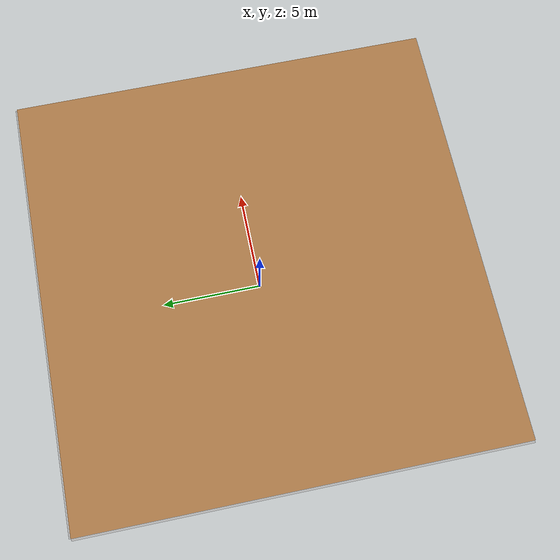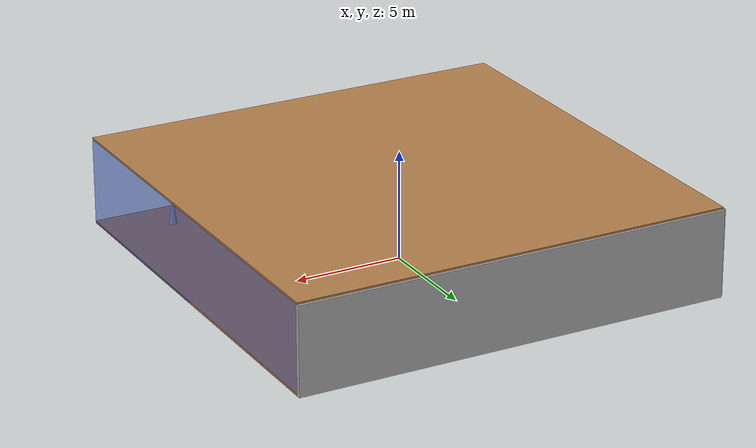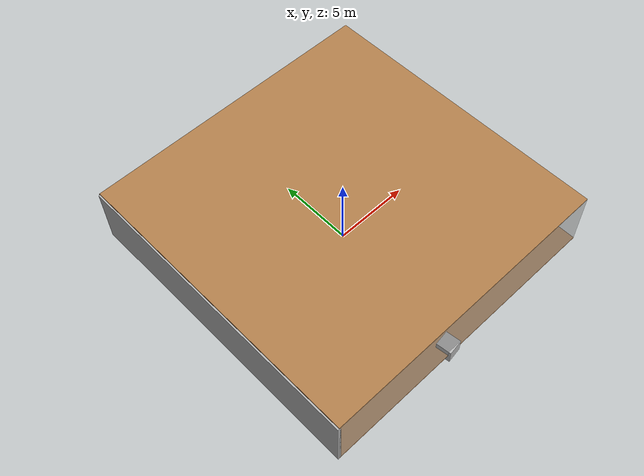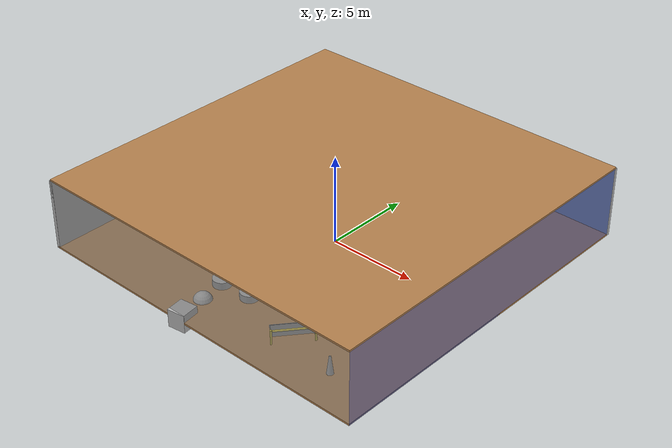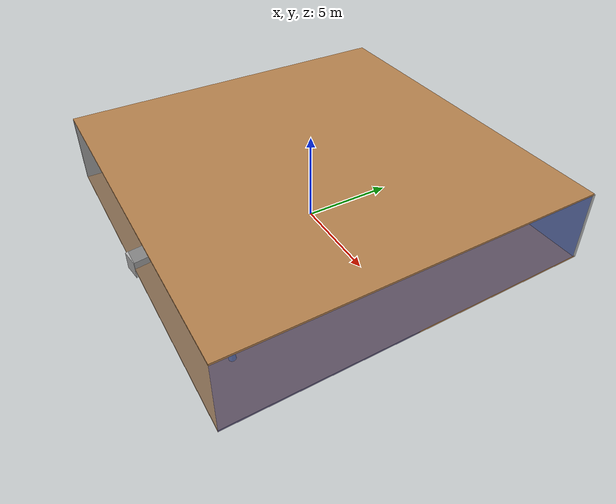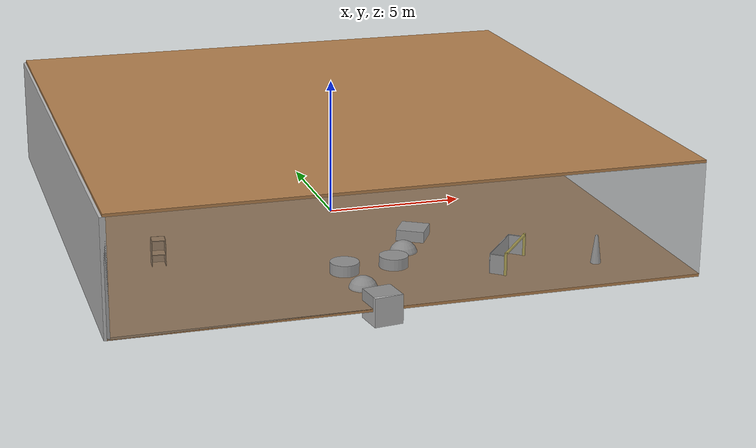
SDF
<sdf version="1.4">
 <world name="default">
  <physics type="ode">
   <max_step_size>0.001</max_step_size>
   <real_time_factor>1</real_time_factor>
   <real_time_update_rate>1000</real_time_update_rate>
   <gravity>0 0 -9.8</gravity>
  </physics>
  <scene><ambient>0.4 0.4 0.4 1</ambient><background>0.7 0.7 0.7 1</background><shadows>1</shadows></scene>
  <model name="Surrounding">
   <static>1</static>
   <link name="Ceiling">
    <collision name="Ceiling_Collision"><geometry><box><size>20 20 0.1</size></box></geometry></collision>
    <visual name="Ceiling_Visual">
     <geometry><box><size>20 20 0.1</size></box></geometry>
     <material>
      <script><uri>file://media/materials/scripts/gazebo.material</uri><name>Gazebo/WoodPallet</name></script>
     </material>
    </visual>
    <pose>0 0 4.05 0 0 0</pose>
   </link>
   <link name="Wall_South">
    <collision name="Wall_South_Collision">
     <geometry><box><size>20 0 4</size></box></geometry>
     <pose>0 0 2 0 -0 0</pose>
    </collision>
    <visual name="Wall_South_Visual">
     <pose>0 0 2 0 -0 0</pose>
     <geometry><box><size>20 0 4</size></box></geometry>
     <material>
      <script><uri>file://media/materials/scripts/gazebo.material</uri><name>Gazebo/GreyTransparent</name></script>
     </material>
    </visual>
    <velocity_decay><linear>0</linear><angular>0</angular></velocity_decay>
    <pose>0 -10 0 0 -0 0</pose>
   </link>
   <link name="Wall_East">
    <collision name="Wall_21_Collision">
     <geometry><box><size>20 0 4</size></box></geometry>
     <pose>0 0 2 0 -0 0</pose>
    </collision>
    <visual name="Wall_21_Visual">
     <pose>0 0 2 0 -0 0</pose>
     <geometry><box><size>20 0 4</size></box></geometry>
     <material>
      <script><uri>file://media/materials/scripts/gazebo.material</uri><name>Gazebo/BlueTransparent</name></script>
     </material>
    </visual>
    <velocity_decay><linear>0</linear><angular>0</angular></velocity_decay>
    <pose>10 0 0 0 -0 1.5708</pose>
   </link>
   <link name="Wall_North">
    <collision name="Wall_22_Collision">
     <geometry><box><size>20 0.2 4</size></box></geometry>
     <pose>0 0 2 0 -0 0</pose>
    </collision>
    <visual name="Wall_22_Visual">
     <pose>0 0 2 0 -0 0</pose>
     <geometry><box><size>20 0.2 4</size></box></geometry>
     <material>
      <script><uri>file://media/materials/scripts/gazebo.material</uri><name>Gazebo/Pioneer2Body</name></script>
     </material>
    </visual>
    <velocity_decay><linear>0</linear><angular>0</angular></velocity_decay>
    <pose>0 10 0 0 -0 0</pose>
   </link>
   <link name="Wall_West">
    <collision name="Wall_23_Collision">
     <geometry><box><size>20 0.2 4</size></box></geometry>
     <pose>0 0 2 0 -0 0</pose>
    </collision>
    <visual name="Wall_23_Visual">
     <pose>0 0 2 0 -0 0</pose>
     <geometry><box><size>20 0.2 4</size></box></geometry>
     <material>
      <script><uri>file://media/materials/scripts/gazebo.material</uri><name>Gazebo/JointAnchor</name></script>
     </material>
    </visual>
    <velocity_decay><linear>0</linear><angular>0</angular></velocity_decay>
    <pose>-10 0 0 0 0 -1.5708</pose>
   </link>
   <link name="Ground_link">
    <collision name="collision">
     <pose>0 0 .05 0 -0 0</pose>
     <geometry><box><size>20 20 0.1</size></box></geometry>
    </collision>
    <visual name="visual">
     <pose>0 0 .05 0 -0 0</pose>
     <geometry><box><size>20 20 0.1</size></box></geometry>
     <material>
      <script><uri>file://media/materials/scripts/gazebo.material</uri><name>Gazebo/WoodPallet</name></script>
     </material>
    </visual>
   </link>
   <static>1</static>
  </model>
  <spherical_coordinates>
   <surface_model>EARTH_WGS84</surface_model>
   <latitude_deg>0</latitude_deg>
   <longitude_deg>0</longitude_deg>
   <elevation>0</elevation>
   <heading_deg>0</heading_deg>
  </spherical_coordinates>
  <light name="lightball_0" type="diffuse">
   <diffuse>0.8 0.8 0.8 1</diffuse>
   <specular>0.2 0.2 0.2 1</specular>
   <attenuation>
    <range>100</range>
    <constant>0.7</constant>
    <linear>0.01</linear>
    <quadratic>0.001</quadratic>
   </attenuation>
   <direction>-0.5 0.1 -0.9</direction>
   <pose>7.89315027812 -0.558705841545 2.51275043069 0 0 0</pose>
  </light>
  <light name="lightball_1" type="diffuse">
   <diffuse>0.8 0.8 0.8 1</diffuse>
   <specular>0.2 0.2 0.2 1</specular>
   <attenuation>
    <range>100</range>
    <constant>0.7</constant>
    <linear>0.01</linear>
    <quadratic>0.001</quadratic>
   </attenuation>
   <direction>-0.5 0.1 -0.9</direction>
   <pose>1.76040319988 2.26313819667 2.92238195333 0 0 0</pose>
  </light>
  <light name="lightball_2" type="diffuse">
   <diffuse>0.8 0.8 0.8 1</diffuse>
   <specular>0.2 0.2 0.2 1</specular>
   <attenuation>
    <range>100</range>
    <constant>0.7</constant>
    <linear>0.01</linear>
    <quadratic>0.001</quadratic>
   </attenuation>
   <direction>-0.5 0.1 -0.9</direction>
   <pose>7.23364275407 4.60409021464 3.7076251924 0 0 0</pose>
  </light>
  <light name="lightball_3" type="diffuse">
   <diffuse>0.8 0.8 0.8 1</diffuse>
   <specular>0.2 0.2 0.2 1</specular>
   <attenuation>
    <range>100</range>
    <constant>0.7</constant>
    <linear>0.01</linear>
    <quadratic>0.001</quadratic>
   </attenuation>
   <direction>-0.5 0.1 -0.9</direction>
   <pose>-6.95591188091 -1.68863627214 3.1051038206 0 0 0</pose>
  </light>
  <light name="lightball_4" type="diffuse">
   <diffuse>0.8 0.8 0.8 1</diffuse>
   <specular>0.2 0.2 0.2 1</specular>
   <attenuation>
    <range>100</range>
    <constant>0.7</constant>
    <linear>0.01</linear>
    <quadratic>0.001</quadratic>
   </attenuation>
   <direction>-0.5 0.1 -0.9</direction>
   <pose>2.0637250718 -5.81463943008 3.85027938935 0 0 0</pose>
  </light>
  <light name="lightball_5" type="diffuse">
   <diffuse>0.8 0.8 0.8 1</diffuse>
   <specular>0.2 0.2 0.2 1</specular>
   <attenuation>
    <range>100</range>
    <constant>0.7</constant>
    <linear>0.01</linear>
    <quadratic>0.001</quadratic>
   </attenuation>
   <direction>-0.5 0.1 -0.9</direction>
   <pose>3.3678851379 -6.03791892881 2.34845768984 0 0 0</pose>
  </light>
  <light name="lightball_6" type="diffuse">
   <diffuse>0.8 0.8 0.8 1</diffuse>
   <specular>0.2 0.2 0.2 1</specular>
   <attenuation>
    <range>100</range>
    <constant>0.7</constant>
    <linear>0.01</linear>
    <quadratic>0.001</quadratic>
   </attenuation>
   <direction>-0.5 0.1 -0.9</direction>
   <pose>3.57676494734 2.11938480713 2.96536259277 0 0 0</pose>
  </light>
  <light name="lightball_7" type="diffuse">
   <diffuse>0.8 0.8 0.8 1</diffuse>
   <specular>0.2 0.2 0.2 1</specular>
   <attenuation>
    <range>100</range>
    <constant>0.7</constant>
    <linear>0.01</linear>
    <quadratic>0.001</quadratic>
   </attenuation>
   <direction>-0.5 0.1 -0.9</direction>
   <pose>6.07279234478 -3.57601150655 2.43842590799 0 0 0</pose>
  </light>
  <light name="lightball_8" type="diffuse">
   <diffuse>0.8 0.8 0.8 1</diffuse>
   <specular>0.2 0.2 0.2 1</specular>
   <attenuation>
    <range>100</range>
    <constant>0.7</constant>
    <linear>0.01</linear>
    <quadratic>0.001</quadratic>
   </attenuation>
   <direction>-0.5 0.1 -0.9</direction>
   <pose>1.73245423769 1.46851644216 0.619704677 0 0 0</pose>
  </light>
  <light name="lightball_9" type="diffuse">
   <diffuse>0.8 0.8 0.8 1</diffuse>
   <specular>0.2 0.2 0.2 1</specular>
   <attenuation>
    <range>100</range>
    <constant>0.7</constant>
    <linear>0.01</linear>
    <quadratic>0.001</quadratic>
   </attenuation>
   <direction>-0.5 0.1 -0.9</direction>
   <pose>6.66368276166 -3.98352685077 1.78442704229 0 0 0</pose>
  </light>
  <light name="lightball_10" type="diffuse">
   <diffuse>0.8 0.8 0.8 1</diffuse>
   <specular>0.2 0.2 0.2 1</specular>
   <attenuation>
    <range>100</range>
    <constant>0.7</constant>
    <linear>0.01</linear>
    <quadratic>0.001</quadratic>
   </attenuation>
   <direction>-0.5 0.1 -0.9</direction>
   <pose>7.25568575779 9.9090677086 0.855200472434 0 0 0</pose>
  </light>
  <include><uri>model://cabinet</uri><pose>-7.29838380976 -4.10251413417 0 0 0 1.49461087777</pose></include>
  <include>
   <uri>model://textured_shapes</uri>
   <pose>-1.22357887832 -8.10389012063 0 0 0 0.134623393612</pose>
  </include>
  <include><uri>model://cabinet</uri><pose>-0.942762866576 7.79304857737 0 0 0 1.98795392319</pose></include>
  <include>
   <uri>model://textured_shapes</uri>
   <pose>1.12735394099 -5.20242468137 0 0 0 2.5980309786</pose>
  </include>
  <include>
   <uri>model://robocup_3Dsim_goal</uri>
   <pose>4.33968545167 -7.54475238396 0 0 0 2.45957164882</pose>
  </include>
  <include>
   <uri>model://construction_cone</uri>
   <pose>7.10005487387 -8.05884126962 0 0 0 1.64900020773</pose>
  </include>
 </world>
</sdf>

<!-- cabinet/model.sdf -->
<sdf version="1.5">
  <model name="cabinet">
    <static>true</static>
    <link name="cabinet_bottom_plate">
      <inertial>
        <pose>0 0 -1 0 0 0</pose>
        <inertia>
          <ixx>2.050000</ixx>
          <ixy>0</ixy>
          <ixz>0</ixz>
          <iyy>2.050000</iyy>
          <iyz>0</iyz>
          <izz>2.050000</izz>
        </inertia>
        <mass>25.000000</mass>
      </inertial>
      <collision name="cabinet_bottom_plate_geom">
        <pose>0 0 0.010000 0 0 0</pose>
        <geometry>
          <box>
            <size>0.450000 0.450000 0.020000</size>
          </box>
        </geometry>
      </collision>
      <visual name="cabinet_bottom_plate_geom_visual">
        <pose>0 0 0.010000 0 0 0</pose>
        <geometry>
          <box>
            <size>0.450000 0.450000 0.020000</size>
          </box>
        </geometry>
        <material>
          <script>
            <uri>model://media/materials/scripts/gazebo.material</uri>
            <name>Gazebo/Wood</name>
          </script>
        </material>
      </visual>
      <collision name="cabinet_bottom_plate_geom_cabinet_back_plate">
        <pose>0.235000 0 0.510000 0 0 0</pose>
        <geometry>
          <box>
            <size>0.020000 0.450000 1.020000</size>
          </box>
        </geometry>
      </collision>
      <visual name="cabinet_bottom_plate_geom_cabinet_back_plate_visual">
        <pose>0.235000 0 0.510000 0 0 0</pose>
        <geometry>
          <box>
            <size>0.020000 0.450000 1.020000</size>
          </box>
        </geometry>
        <material>
          <script>
            <uri>model://media/materials/scripts/gazebo.material</uri>
            <name>Gazebo/Wood</name>
          </script>
        </material>
      </visual>
      <collision name="cabinet_bottom_plate_geom_cabinet_left_plate">
        <pose>0 0.235000 0.510000 0 0 0</pose>
        <geometry>
          <box>
            <size>0.450000 0.020000 1.020000</size>
          </box>
        </geometry>
      </collision>
      <visual name="cabinet_bottom_plate_geom_cabinet_left_plate_visual">
        <pose>0 0.235000 0.510000 0 0 0</pose>
        <geometry>
          <box>
            <size>0.450000 0.020000 1.020000</size>
          </box>
        </geometry>
        <material>
          <script>
            <uri>model://media/materials/scripts/gazebo.material</uri>
            <name>Gazebo/Wood</name>
          </script>
        </material>
      </visual>
      <collision name="cabinet_bottom_plate_geom_cabinet_middle_plate">
        <pose>0 0 0.510000 0 0 0</pose>
        <geometry>
          <box>
            <size>0.450000 0.450000 0.020000</size>
          </box>
        </geometry>
      </collision>
      <visual name="cabinet_bottom_plate_geom_cabinet_middle_plate_visual">
        <pose>0 0 0.510000 0 0 0</pose>
        <geometry>
          <box>
            <size>0.450000 0.450000 0.020000</size>
          </box>
        </geometry>
        <material>
          <script>
            <uri>model://media/materials/scripts/gazebo.material</uri>
            <name>Gazebo/Wood</name>
          </script>
        </material>
      </visual>
      <collision name="cabinet_bottom_plate_geom_cabinet_right_plate">
        <pose>0 -0.235000 0.510000 0 0 0</pose>
        <geometry>
          <box>
            <size>0.450000 0.020000 1.020000</size>
          </box>
        </geometry>
      </collision>
      <visual name="cabinet_bottom_plate_geom_cabinet_right_plate_visual">
        <pose>0 -0.235000 0.510000 0 0 0</pose>
        <geometry>
          <box>
            <size>0.450000 0.020000 1.020000</size>
          </box>
        </geometry>
        <material>
          <script>
            <uri>model://media/materials/scripts/gazebo.material</uri>
            <name>Gazebo/Wood</name>
          </script>
        </material>
      </visual>
      <collision name="cabinet_bottom_plate_geom_cabinet_top_plate">
        <pose>0 0 1.010000 0 0 0</pose>
        <geometry>
          <box>
            <size>0.450000 0.450000 0.020000</size>
          </box>
        </geometry>
      </collision>
      <visual name="cabinet_bottom_plate_geom_cabinet_top_plate_visual">
        <pose>0 0 1.010000 0 0 0</pose>
        <geometry>
          <box>
            <size>0.450000 0.450000 0.020000</size>
          </box>
        </geometry>
        <material>
          <script>
            <uri>model://media/materials/scripts/gazebo.material</uri>
            <name>Gazebo/Wood</name>
          </script>
        </material>
      </visual>
    </link>
  </model>
</sdf>

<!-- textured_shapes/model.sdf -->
<sdf version="1.6">
  <model name="textured_shapes">
    <pose>0 0 0.5 0 0 0</pose>
    <link name="box">
      <pose>0 -1.5 0 0 0 0</pose>
      <collision name="collision">
        <geometry>
          <box>
            <size>1 1 1</size>
          </box>
        </geometry>
      </collision>
      <visual name="visual">
        <geometry>
          <box>
            <size>1 1 1</size>
          </box>
        </geometry>
        <material>
          <script>
            <uri>model://../model_source/models/textured_shapes/materials/scripts</uri>
            <uri>model://../model_source/models/textured_shapes/materials/textures</uri>
            <name>TexturedShape/Squares</name>
          </script>
        </material>
      </visual>
    </link>
    <link name="sphere">
      <collision name="collision">
        <geometry>
          <sphere>
            <radius>0.5</radius>
          </sphere>
        </geometry>
      </collision>
      <visual name="visual">
        <geometry>
          <sphere>
            <radius>0.5</radius>
          </sphere>
        </geometry>
        <material>
          <script>
            <uri>model://../model_source/models/textured_shapes/materials/scripts</uri>
            <uri>model://../model_source/models/textured_shapes/materials/textures</uri>
            <name>TexturedShape/Squares</name>
          </script>
        </material>
      </visual>
    </link>
    <link name="cylinder">
      <pose>0 1.5 0 0 0 0</pose>
      <collision name="collision">
        <geometry>
          <cylinder>
            <radius>0.5</radius>
            <length>1</length>
          </cylinder>
        </geometry>
      </collision>
      <visual name="visual">
        <geometry>
          <cylinder>
            <radius>0.5</radius>
            <length>1</length>
          </cylinder>
        </geometry>
        <material>
          <script>
            <uri>model://../model_source/models/textured_shapes/materials/scripts</uri>
            <uri>model://../model_source/models/textured_shapes/materials/textures</uri>
            <name>TexturedShape/Squares</name>
          </script>
        </material>
      </visual>
    </link>
  </model>
</sdf>

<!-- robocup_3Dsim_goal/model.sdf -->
<sdf version="1.5">
  <model name="robocup_3d_goal">
    <static>true</static>
    <link name="left_post">
      <pose>0 1.05 0.45 0 0 0</pose>
      <collision name="collision">
        <geometry>
          <cylinder>
            <radius>0.05</radius>
            <length>0.9</length>
          </cylinder>
        </geometry>
      </collision>
      <visual name="visual">
        <geometry>
          <cylinder>
            <radius>0.05</radius>
            <length>0.9</length>
          </cylinder>
        </geometry>
        <material>
          <script>
            <uri>file://media/materials/scripts/gazebo.material</uri>
            <name>Gazebo/ZincYellow</name>
          </script>
        </material>
      </visual>
    </link>
    <link name="left_support_horiz_lower">
      <pose>0.30 1.05 0.01 0 0 0</pose>
      <collision name="collision">
        <geometry>
          <box>
            <size>0.50 0.02 0.02</size>
          </box>
        </geometry>
      </collision>
      <visual name="visual">
        <geometry>
          <box>
            <size>0.50 0.02 0.02</size>
          </box>
        </geometry>
        <material>
          <script>
            <uri>file://media/materials/scripts/gazebo.material</uri>
            <name>Gazebo/White</name>
          </script>
        </material>
      </visual>
    </link>
    <link name="left_support_horiz_upper">
      <pose>0.30 1.05 0.79 0 0 0</pose>
      <collision name="collision">
        <geometry>
          <box>
            <size>0.50 0.02 0.02</size>
          </box>
        </geometry>
      </collision>
      <visual name="visual">
        <geometry>
          <box>
            <size>0.50 0.02 0.02</size>
          </box>
        </geometry>
        <material>
          <script>
            <uri>file://media/materials/scripts/gazebo.material</uri>
            <name>Gazebo/White</name>
          </script>
        </material>
      </visual>
    </link>
    <link name="left_support_vertical">
      <pose>0.56 1.05 0.4 0 1.5708 0</pose>
      <collision name="collision">
        <geometry>
          <box>
            <size>0.80 0.02 0.02</size>
          </box>
        </geometry>
      </collision>
      <visual name="visual">
        <geometry>
          <box>
            <size>0.80 0.02 0.02</size>
          </box>
        </geometry>
        <material>
          <script>
            <uri>file://media/materials/scripts/gazebo.material</uri>
            <name>Gazebo/White</name>
          </script>
        </material>
      </visual>
    </link>
    <link name="right_support_horiz_lower">
      <pose>0.30 -1.05 0.01 0 0 0</pose>
      <collision name="collision">
        <geometry>
          <box>
            <size>0.50 0.02 0.02</size>
          </box>
        </geometry>
      </collision>
      <visual name="visual">
        <geometry>
          <box>
            <size>0.50 0.02 0.02</size>
          </box>
        </geometry>
        <material>
          <script>
            <uri>file://media/materials/scripts/gazebo.material</uri>
            <name>Gazebo/White</name>
          </script>
        </material>
      </visual>
    </link>
    <link name="right_support_horiz_upper">
      <pose>0.30 -1.05 0.79 0 0 0</pose>
      <collision name="collision">
        <geometry>
          <box>
            <size>0.50 0.02 0.02</size>
          </box>
        </geometry>
      </collision>
      <visual name="visual">
        <geometry>
          <box>
            <size>0.50 0.02 0.02</size>
          </box>
        </geometry>
        <material>
          <script>
            <uri>file://media/materials/scripts/gazebo.material</uri>
            <name>Gazebo/White</name>
          </script>
        </material>
      </visual>
    </link>
    <link name="right_support_vertical">
      <pose>0.56 -1.05 0.4 0 1.5708 0</pose>
      <collision name="collision">
        <geometry>
          <box>
            <size>0.80 0.02 0.02</size>
          </box>
        </geometry>
      </collision>
      <visual name="visual">
        <geometry>
          <box>
            <size>0.80 0.02 0.02</size>
          </box>
        </geometry>
        <material>
          <script>
            <uri>file://media/materials/scripts/gazebo.material</uri>
            <name>Gazebo/White</name>
          </script>
        </material>
      </visual>
    </link>
    <link name="center_support_horiz_lower">
      <pose>0.56 0 0.01 0 1.5708 0</pose>
      <collision name="collision">
        <geometry>
          <box>
            <size>0.02 2.08 0.02</size>
          </box>
        </geometry>
      </collision>
      <visual name="visual">
        <geometry>
          <box>
            <size>0.02 2.08 0.02</size>
          </box>
        </geometry>
        <material>
          <script>
            <uri>file://media/materials/scripts/gazebo.material</uri>
            <name>Gazebo/White</name>
          </script>
        </material>
      </visual>
    </link>
    <link name="center_support_horiz_upper">
      <pose>0.56 0 0.79 0 1.5708 0</pose>
      <collision name="collision">
        <geometry>
          <box>
            <size>0.02 2.08 0.02</size>
          </box>
        </geometry>
      </collision>
      <visual name="visual">
        <geometry>
          <box>
            <size>0.02 2.08 0.02</size>
          </box>
        </geometry>
        <material>
          <script>
            <uri>file://media/materials/scripts/gazebo.material</uri>
            <name>Gazebo/White</name>
          </script>
        </material>
      </visual>
    </link>
    <link name="right_post">
      <pose>0 -1.05 0.45 0 0 0</pose>
      <collision name="collision">
        <geometry>
          <cylinder>
            <radius>0.05</radius>
            <length>0.9</length>
          </cylinder>
        </geometry>
      </collision>
      <visual name="visual">
        <geometry>
          <cylinder>
            <radius>0.05</radius>
            <length>0.9</length>
          </cylinder>
        </geometry>
        <material>
          <script>
            <uri>file://media/materials/scripts/gazebo.material</uri>
            <name>Gazebo/ZincYellow</name>
          </script>
        </material>
      </visual>
    </link>
    <link name="crossbar">
      <pose>0 0 0.85 1.57 1.57 0</pose>
      <collision name="collision">
        <geometry>
          <cylinder>
            <radius>0.05</radius>
            <length>2.0</length>
          </cylinder>
        </geometry>
      </collision>
      <visual name="visual">
        <geometry>
          <cylinder>
            <radius>0.05</radius>
            <length>2.0</length>
          </cylinder>
        </geometry>
        <material>
          <script>
            <uri>file://media/materials/scripts/gazebo.material</uri>
            <name>Gazebo/ZincYellow</name>
          </script>
        </material>
      </visual>
    </link>
    <link name="center_net">
      <pose>0.56 0 0.40 0 0 0</pose>
      <collision name="collision">
        <geometry>
          <box>
            <size>0.01 2.1 0.80</size>
          </box>
        </geometry>
      </collision>
      <visual name="visual">
        <geometry>
          <box>
            <size>0.01 2.1 0.80</size>
          </box>
        </geometry>
        <material>
          <script>
            <uri>model://../model_source/models/robocup09_spl_field/materials/scripts/</uri>
            <uri>model://../model_source/models/robocup09_spl_field/materials/textures/</uri>
            <name>RoboCup/Net</name>
          </script>
        </material>
      </visual>
    </link>
    <link name="left_net">
      <pose>0.30 1.05 0.40 0 0 0</pose>
      <collision name="collision">
        <geometry>
          <box>
            <size>0.50 0.01 0.76</size>
          </box>
        </geometry>
      </collision>
      <visual name="visual">
        <geometry>
          <box>
            <size>0.50 0.01 0.76</size>
          </box>
        </geometry>
        <material>
          <script>
            <uri>model://../model_source/models/robocup09_spl_field/materials/scripts/</uri>
            <uri>model://../model_source/models/robocup09_spl_field/materials/textures/</uri>
            <name>RoboCup/Net</name>
          </script>
        </material>
      </visual>
    </link>
    <link name="right_net">
      <pose>0.30 -1.05 0.40 0 0 0</pose>
      <collision name="collision">
        <geometry>
          <box>
            <size>0.50 0.01 0.76</size>
          </box>
        </geometry>
      </collision>
      <visual name="visual">
        <geometry>
          <box>
            <size>0.50 0.01 0.76</size>
          </box>
        </geometry>
        <material>
          <script>
            <uri>model://../model_source/models/robocup09_spl_field/materials/scripts/</uri>
            <uri>model://../model_source/models/robocup09_spl_field/materials/textures/</uri>
            <name>RoboCup/Net</name>
          </script>
        </material>
      </visual>
    </link>
  </model>
</sdf>

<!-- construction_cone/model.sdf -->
<sdf version="1.5">
  <model name="Construction Cone">
    <link name="link">
      <collision name="collision">
        <geometry>
          <mesh>
            <scale>10 10 10</scale>
            <uri>file://isr-testbed/construction_cone/meshes/construction_cone.dae</uri>
          </mesh>
        </geometry>
      </collision>
      <visual name="visual">
        <geometry>
          <mesh>
            <scale>10 10 10</scale>
            <uri>file://isr-testbed/construction_cone/meshes/construction_cone.dae</uri>
          </mesh>
        </geometry>
      </visual>
    </link>
  </model>
</sdf>
